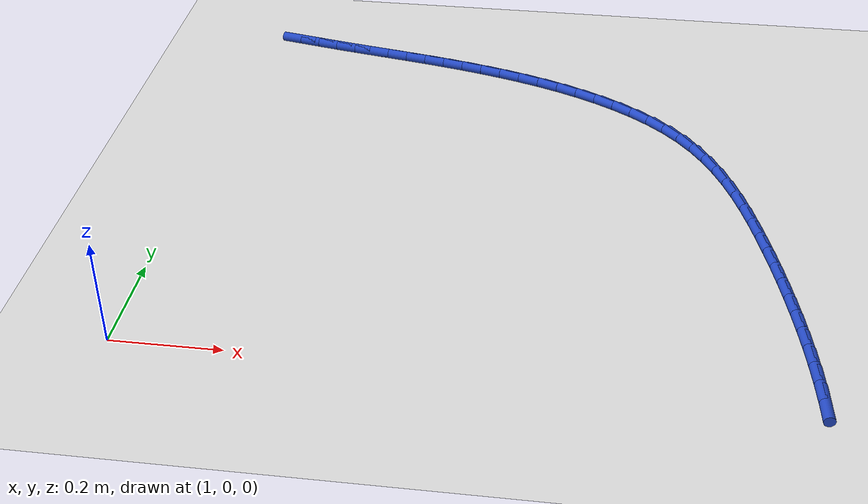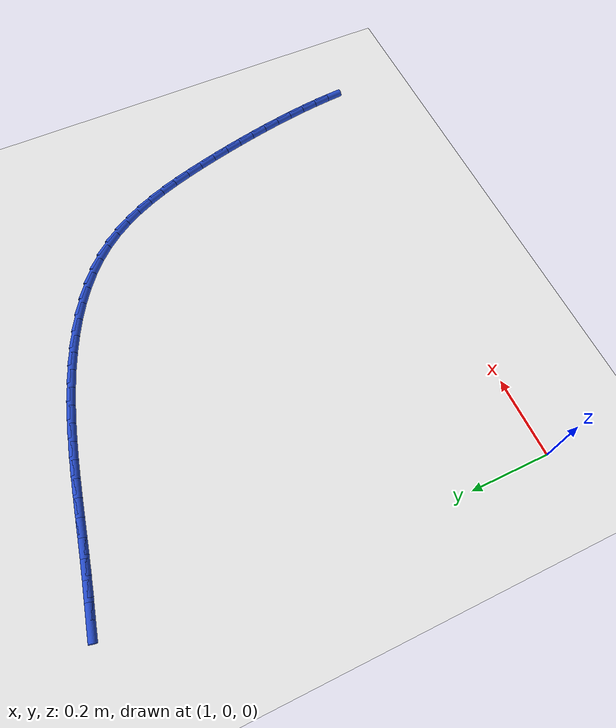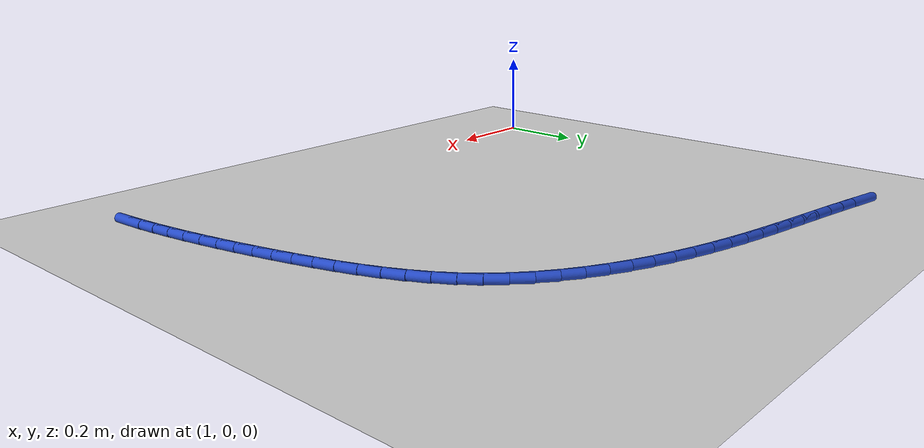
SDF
<sdf version="1.6">
 <world name="default">
  <model name="ground_plane">
   <static>1</static>
   <link name="link">
    <collision name="collision">
     <geometry><plane><normal>0 0 1</normal><size>100 100</size></plane></geometry>
     <surface><friction><ode><mu>100</mu><mu2>50</mu2></ode></friction></surface>
    </collision>
    <visual name="visual">
     <cast_shadows>0</cast_shadows>
     <geometry><plane><normal>0 0 1</normal><size>100 100</size></plane></geometry>
     <material>
      <script><uri>file://media/materials/scripts/gazebo.material</uri><name>Gazebo/WhiteGlow</name></script>
     </material>
    </visual>
   </link>
  </model>
  <model name="line">
   <link name="link_39">
    <pose>1.0905846571315483 1.0533346934213708 0.01 0 1.57 -0.20464670937285362</pose>
    <collision name="collision">
     <geometry><cylinder><radius>0.01</radius><length>0.08</length></cylinder></geometry>
    </collision>
    <visual name="visual">
     <material>
      <script><name>Gazebo/Blue</name><uri>file://media/materials/scripts/gazebo.material</uri></script>
     </material>
     <geometry><cylinder><radius>0.01</radius><length>0.08</length></cylinder></geometry>
    </visual>
   </link>
   <link name="link_40">
    <pose>1.1341519393956485 1.0442922046361267 0.01 0 1.57 -0.202477934255128</pose>
    <collision name="collision">
     <geometry><cylinder><radius>0.01</radius><length>0.08</length></cylinder></geometry>
    </collision>
    <visual name="visual">
     <material>
      <script><name>Gazebo/Blue</name><uri>file://media/materials/scripts/gazebo.material</uri></script>
     </material>
     <geometry><cylinder><radius>0.01</radius><length>0.08</length></cylinder></geometry>
    </visual>
   </link>
   <link name="link_41">
    <pose>1.177596903277948 1.035373340506603 0.01 0 1.57 -0.19210740276732197</pose>
    <collision name="collision">
     <geometry><cylinder><radius>0.01</radius><length>0.08</length></cylinder></geometry>
    </collision>
    <visual name="visual">
     <material>
      <script><name>Gazebo/Blue</name><uri>file://media/materials/scripts/gazebo.material</uri></script>
     </material>
     <geometry><cylinder><radius>0.01</radius><length>0.08</length></cylinder></geometry>
    </visual>
   </link>
   <link name="link_42">
    <pose>1.2209153533538637 1.0269476387652823 0.01 0 1.57 -0.18458665404068675</pose>
    <collision name="collision">
     <geometry><cylinder><radius>0.01</radius><length>0.08</length></cylinder></geometry>
    </collision>
    <visual name="visual">
     <material>
      <script><name>Gazebo/Blue</name><uri>file://media/materials/scripts/gazebo.material</uri></script>
     </material>
     <geometry><cylinder><radius>0.01</radius><length>0.08</length></cylinder></geometry>
    </visual>
   </link>
   <link name="link_43">
    <pose>1.2641364574825134 1.0188777377213005 0.01 0 1.57 -0.18189383639944168</pose>
    <collision name="collision">
     <geometry><cylinder><radius>0.01</radius><length>0.08</length></cylinder></geometry>
    </collision>
    <visual name="visual">
     <material>
      <script><name>Gazebo/Blue</name><uri>file://media/materials/scripts/gazebo.material</uri></script>
     </material>
     <geometry><cylinder><radius>0.01</radius><length>0.08</length></cylinder></geometry>
    </visual>
   </link>
   <link name="link_44">
    <pose>1.3072950809854798 1.0109397122488666 0.01 0 1.57 -0.184071219256805</pose>
    <collision name="collision">
     <geometry><cylinder><radius>0.01</radius><length>0.08</length></cylinder></geometry>
    </collision>
    <visual name="visual">
     <material>
      <script><name>Gazebo/Blue</name><uri>file://media/materials/scripts/gazebo.material</uri></script>
     </material>
     <geometry><cylinder><radius>0.01</radius><length>0.08</length></cylinder></geometry>
    </visual>
   </link>
   <link name="link_45">
    <pose>1.3504260891843447 1.0029096372221902 0.01 0 1.57 -0.19111093273985194</pose>
    <collision name="collision">
     <geometry><cylinder><radius>0.01</radius><length>0.08</length></cylinder></geometry>
    </collision>
    <visual name="visual">
     <material>
      <script><name>Gazebo/Blue</name><uri>file://media/materials/scripts/gazebo.material</uri></script>
     </material>
     <geometry><cylinder><radius>0.01</radius><length>0.08</length></cylinder></geometry>
    </visual>
   </link>
   <link name="link_46">
    <pose>1.3935643474006902 0.9945635875154802 0.01 0 1.57 -0.202953517383078</pose>
    <collision name="collision">
     <geometry><cylinder><radius>0.01</radius><length>0.08</length></cylinder></geometry>
    </collision>
    <visual name="visual">
     <material>
      <script><name>Gazebo/Blue</name><uri>file://media/materials/scripts/gazebo.material</uri></script>
     </material>
     <geometry><cylinder><radius>0.01</radius><length>0.08</length></cylinder></geometry>
    </visual>
   </link>
   <link name="link_47">
    <pose>1.4367447209560988 0.9856776380029463 0.01 0 1.57 -0.2194845324050165</pose>
    <collision name="collision">
     <geometry><cylinder><radius>0.01</radius><length>0.08</length></cylinder></geometry>
    </collision>
    <visual name="visual">
     <material>
      <script><name>Gazebo/Blue</name><uri>file://media/materials/scripts/gazebo.material</uri></script>
     </material>
     <geometry><cylinder><radius>0.01</radius><length>0.08</length></cylinder></geometry>
    </visual>
   </link>
   <link name="link_48">
    <pose>1.4800020751721525 0.9760278635587967 0.01 0 1.57 -0.2405298143651853</pose>
    <collision name="collision">
     <geometry><cylinder><radius>0.01</radius><length>0.08</length></cylinder></geometry>
    </collision>
    <visual name="visual">
     <material>
      <script><name>Gazebo/Blue</name><uri>file://media/materials/scripts/gazebo.material</uri></script>
     </material>
     <geometry><cylinder><radius>0.01</radius><length>0.08</length></cylinder></geometry>
    </visual>
   </link>
   <link name="link_49">
    <pose>1.5233712753704336 0.9653903390572418 0.01 0 1.57 -0.2658501743627113</pose>
    <collision name="collision">
     <geometry><cylinder><radius>0.01</radius><length>0.08</length></cylinder></geometry>
    </collision>
    <visual name="visual">
     <material>
      <script><name>Gazebo/Blue</name><uri>file://media/materials/scripts/gazebo.material</uri></script>
     </material>
     <geometry><cylinder><radius>0.01</radius><length>0.08</length></cylinder></geometry>
    </visual>
   </link>
   <link name="link_50">
    <pose>1.5668863192249292 0.9535413860957317 0.01 0 1.57 -0.29518545745611224</pose>
    <collision name="collision">
     <geometry><cylinder><radius>0.01</radius><length>0.08</length></cylinder></geometry>
    </collision>
    <visual name="visual">
     <material>
      <script><name>Gazebo/Blue</name><uri>file://media/materials/scripts/gazebo.material</uri></script>
     </material>
     <geometry><cylinder><radius>0.01</radius><length>0.08</length></cylinder></geometry>
    </visual>
   </link>
   <link name="link_51">
    <pose>1.6104699896521077 0.9402889511683342 0.01 0 1.57 -0.32866140924841397</pose>
    <collision name="collision">
     <geometry><cylinder><radius>0.01</radius><length>0.08</length></cylinder></geometry>
    </collision>
    <visual name="visual">
     <material>
      <script><name>Gazebo/Blue</name><uri>file://media/materials/scripts/gazebo.material</uri></script>
     </material>
     <geometry><cylinder><radius>0.01</radius><length>0.08</length></cylinder></geometry>
    </visual>
   </link>
   <link name="link_52">
    <pose>1.6538256396673474 0.9255033775956852 0.01 0 1.57 -0.3667156572551275</pose>
    <collision name="collision">
     <geometry><cylinder><radius>0.01</radius><length>0.08</length></cylinder></geometry>
    </collision>
    <visual name="visual">
     <material>
      <script><name>Gazebo/Blue</name><uri>file://media/materials/scripts/gazebo.material</uri></script>
     </material>
     <geometry><cylinder><radius>0.01</radius><length>0.08</length></cylinder></geometry>
    </visual>
   </link>
   <link name="link_53">
    <pose>1.6966309251855796 0.9090623158954425 0.01 0 1.57 -0.40987348086256875</pose>
    <collision name="collision">
     <geometry><cylinder><radius>0.01</radius><length>0.08</length></cylinder></geometry>
    </collision>
    <visual name="visual">
     <material>
      <script><name>Gazebo/Blue</name><uri>file://media/materials/scripts/gazebo.material</uri></script>
     </material>
     <geometry><cylinder><radius>0.01</radius><length>0.08</length></cylinder></geometry>
    </visual>
   </link>
   <link name="link_54">
    <pose>1.7385635021217336 0.8908434165852644 0.01 0 1.57 -0.4587324882292901</pose>
    <collision name="collision">
     <geometry><cylinder><radius>0.01</radius><length>0.08</length></cylinder></geometry>
    </collision>
    <visual name="visual">
     <material>
      <script><name>Gazebo/Blue</name><uri>file://media/materials/scripts/gazebo.material</uri></script>
     </material>
     <geometry><cylinder><radius>0.01</radius><length>0.08</length></cylinder></geometry>
    </visual>
   </link>
   <link name="link_55">
    <pose>1.77930102639074 0.8707243301828093 0.01 0 1.57 -0.5139434324421377</pose>
    <collision name="collision">
     <geometry><cylinder><radius>0.01</radius><length>0.08</length></cylinder></geometry>
    </collision>
    <visual name="visual">
     <material>
      <script><name>Gazebo/Blue</name><uri>file://media/materials/scripts/gazebo.material</uri></script>
     </material>
     <geometry><cylinder><radius>0.01</radius><length>0.08</length></cylinder></geometry>
    </visual>
   </link>
   <link name="link_56">
    <pose>1.8185211539075303 0.8485827072057349 0.01 0 1.57 -0.57617317073375</pose>
    <collision name="collision">
     <geometry><cylinder><radius>0.01</radius><length>0.08</length></cylinder></geometry>
    </collision>
    <visual name="visual">
     <material>
      <script><name>Gazebo/Blue</name><uri>file://media/materials/scripts/gazebo.material</uri></script>
     </material>
     <geometry><cylinder><radius>0.01</radius><length>0.08</length></cylinder></geometry>
    </visual>
   </link>
   <link name="link_57">
    <pose>1.8559015405870343 0.8242961981717001 0.01 0 1.57 -0.6460407203655865</pose>
    <collision name="collision">
     <geometry><cylinder><radius>0.01</radius><length>0.08</length></cylinder></geometry>
    </collision>
    <visual name="visual">
     <material>
      <script><name>Gazebo/Blue</name><uri>file://media/materials/scripts/gazebo.material</uri></script>
     </material>
     <geometry><cylinder><radius>0.01</radius><length>0.08</length></cylinder></geometry>
    </visual>
   </link>
   <link name="link_58">
    <pose>1.8911198423441828 0.7977424535983626 0.01 0 1.57 -0.7240175976298837</pose>
    <collision name="collision">
     <geometry><cylinder><radius>0.01</radius><length>0.08</length></cylinder></geometry>
    </collision>
    <visual name="visual">
     <material>
      <script><name>Gazebo/Blue</name><uri>file://media/materials/scripts/gazebo.material</uri></script>
     </material>
     <geometry><cylinder><radius>0.01</radius><length>0.08</length></cylinder></geometry>
    </visual>
   </link>
   <link name="link_59">
    <pose>1.9238537150939061 0.7687991240033809 0.01 0 1.57 -0.8102888444631497</pose>
    <collision name="collision">
     <geometry><cylinder><radius>0.01</radius><length>0.08</length></cylinder></geometry>
    </collision>
    <visual name="visual">
     <material>
      <script><name>Gazebo/Blue</name><uri>file://media/materials/scripts/gazebo.material</uri></script>
     </material>
     <geometry><cylinder><radius>0.01</radius><length>0.08</length></cylinder></geometry>
    </visual>
   </link>
   <link name="link_60">
    <pose>1.9537808147511333 0.7373438599044128 0.01 0 1.57 -0.9038941767574197</pose>
    <collision name="collision">
     <geometry><cylinder><radius>0.01</radius><length>0.08</length></cylinder></geometry>
    </collision>
    <visual name="visual">
     <material>
      <script><name>Gazebo/Blue</name><uri>file://media/materials/scripts/gazebo.material</uri></script>
     </material>
     <geometry><cylinder><radius>0.01</radius><length>0.08</length></cylinder></geometry>
    </visual>
   </link>
   <link name="link_61">
    <pose>1.9806025216551537 0.7032726186183581 0.01 0 1.57 -0.9939073427537598</pose>
    <collision name="collision">
     <geometry><cylinder><radius>0.01</radius><length>0.08</length></cylinder></geometry>
    </collision>
    <visual name="visual">
     <material>
      <script><name>Gazebo/Blue</name><uri>file://media/materials/scripts/gazebo.material</uri></script>
     </material>
     <geometry><cylinder><radius>0.01</radius><length>0.08</length></cylinder></geometry>
    </visual>
   </link>
   <link name="link_62">
    <pose>2.0043687355795408 0.6667502902387098 0.01 0 1.57 -1.0720706787270513</pose>
    <collision name="collision">
     <geometry><cylinder><radius>0.01</radius><length>0.08</length></cylinder></geometry>
    </collision>
    <visual name="visual">
     <material>
      <script><name>Gazebo/Blue</name><uri>file://media/materials/scripts/gazebo.material</uri></script>
     </material>
     <geometry><cylinder><radius>0.01</radius><length>0.08</length></cylinder></geometry>
    </visual>
   </link>
   <link name="link_63">
    <pose>2.0253943770851337 0.628146266442407 0.01 0 1.57 -1.1383589704323769</pose>
    <collision name="collision">
     <geometry><cylinder><radius>0.01</radius><length>0.08</length></cylinder></geometry>
    </collision>
    <visual name="visual">
     <material>
      <script><name>Gazebo/Blue</name><uri>file://media/materials/scripts/gazebo.material</uri></script>
     </material>
     <geometry><cylinder><radius>0.01</radius><length>0.08</length></cylinder></geometry>
    </visual>
   </link>
   <link name="link_64">
    <pose>2.0440009977478404 0.5878350556864552 0.01 0 1.57 -1.1933658331264245</pose>
    <collision name="collision">
     <geometry><cylinder><radius>0.01</radius><length>0.08</length></cylinder></geometry>
    </collision>
    <visual name="visual">
     <material>
      <script><name>Gazebo/Blue</name><uri>file://media/materials/scripts/gazebo.material</uri></script>
     </material>
     <geometry><cylinder><radius>0.01</radius><length>0.08</length></cylinder></geometry>
    </visual>
   </link>
   <link name="link_65">
    <pose>2.0605101491435676 0.5461911664278596 0.01 0 1.57 -1.2378378202015998</pose>
    <collision name="collision">
     <geometry><cylinder><radius>0.01</radius><length>0.08</length></cylinder></geometry>
    </collision>
    <visual name="visual">
     <material>
      <script><name>Gazebo/Blue</name><uri>file://media/materials/scripts/gazebo.material</uri></script>
     </material>
     <geometry><cylinder><radius>0.01</radius><length>0.08</length></cylinder></geometry>
    </visual>
   </link>
   <link name="link_66">
    <pose>2.0752433828482233 0.5035891071236247 0.01 0 1.57 -1.2724887690015396</pose>
    <collision name="collision">
     <geometry><cylinder><radius>0.01</radius><length>0.08</length></cylinder></geometry>
    </collision>
    <visual name="visual">
     <material>
      <script><name>Gazebo/Blue</name><uri>file://media/materials/scripts/gazebo.material</uri></script>
     </material>
     <geometry><cylinder><radius>0.01</radius><length>0.08</length></cylinder></geometry>
    </visual>
   </link>
   <link name="link_67">
    <pose>2.088522250437714 0.4604033862307565 0.01 0 1.57 -1.2978840357710666</pose>
    <collision name="collision">
     <geometry><cylinder><radius>0.01</radius><length>0.08</length></cylinder></geometry>
    </collision>
    <visual name="visual">
     <material>
      <script><name>Gazebo/Blue</name><uri>file://media/materials/scripts/gazebo.material</uri></script>
     </material>
     <geometry><cylinder><radius>0.01</radius><length>0.08</length></cylinder></geometry>
    </visual>
   </link>
   <link name="link_68">
    <pose>2.1006683034879474 0.41700851220625945 0.01 0 1.57 -1.3153705076198452</pose>
    <collision name="collision">
     <geometry><cylinder><radius>0.01</radius><length>0.08</length></cylinder></geometry>
    </collision>
    <visual name="visual">
     <material>
      <script><name>Gazebo/Blue</name><uri>file://media/materials/scripts/gazebo.material</uri></script>
     </material>
     <geometry><cylinder><radius>0.01</radius><length>0.08</length></cylinder></geometry>
    </visual>
   </link>
   <link name="link_69">
    <pose>2.1119690992795714 0.373731929173753 0.01 0 1.57 -1.33080503431726</pose>
    <collision name="collision">
     <geometry><cylinder><radius>0.01</radius><length>0.08</length></cylinder></geometry>
    </collision>
    <visual name="visual">
     <material>
      <script><name>Gazebo/Blue</name><uri>file://media/materials/scripts/gazebo.material</uri></script>
     </material>
     <geometry><cylinder><radius>0.01</radius><length>0.08</length></cylinder></geometry>
    </visual>
   </link>
   <link name="link_70">
    <pose>2.1225164460687775 0.3306300711571564 0.01 0 1.57 -1.3462037266616618</pose>
    <collision name="collision">
     <geometry><cylinder><radius>0.01</radius><length>0.08</length></cylinder></geometry>
    </collision>
    <visual name="visual">
     <material>
      <script><name>Gazebo/Blue</name><uri>file://media/materials/scripts/gazebo.material</uri></script>
     </material>
     <geometry><cylinder><radius>0.01</radius><length>0.08</length></cylinder></geometry>
    </visual>
   </link>
   <link name="link_71">
    <pose>2.1323322295170537 0.28766256592853956 0.01 0 1.57 -1.3615142885913125</pose>
    <collision name="collision">
     <geometry><cylinder><radius>0.01</radius><length>0.08</length></cylinder></geometry>
    </collision>
    <visual name="visual">
     <material>
      <script><name>Gazebo/Blue</name><uri>file://media/materials/scripts/gazebo.material</uri></script>
     </material>
     <geometry><cylinder><radius>0.01</radius><length>0.08</length></cylinder></geometry>
    </visual>
   </link>
   <link name="link_72">
    <pose>2.141438247999538 0.2447889204139899 0.01 0 1.57 -1.3767473758317377</pose>
    <collision name="collision">
     <geometry><cylinder><radius>0.01</radius><length>0.08</length></cylinder></geometry>
    </collision>
    <visual name="visual">
     <material>
      <script><name>Gazebo/Blue</name><uri>file://media/materials/scripts/gazebo.material</uri></script>
     </material>
     <geometry><cylinder><radius>0.01</radius><length>0.08</length></cylinder></geometry>
    </visual>
   </link>
   <link name="link_73">
    <pose>2.14985326815404 0.20196914995853085 0.01 0 1.57 -1.3928373715265758</pose>
    <collision name="collision">
     <geometry><cylinder><radius>0.01</radius><length>0.08</length></cylinder></geometry>
    </collision>
    <visual name="visual">
     <material>
      <script><name>Gazebo/Blue</name><uri>file://media/materials/scripts/gazebo.material</uri></script>
     </material>
     <geometry><cylinder><radius>0.01</radius><length>0.08</length></cylinder></geometry>
    </visual>
   </link>
   <link name="link_74">
    <pose>2.1575510480495095 0.15917081779353703 0.01 0 1.57 -1.4105181662942863</pose>
    <collision name="collision">
     <geometry><cylinder><radius>0.01</radius><length>0.08</length></cylinder></geometry>
    </collision>
    <visual name="visual">
     <material>
      <script><name>Gazebo/Blue</name><uri>file://media/materials/scripts/gazebo.material</uri></script>
     </material>
     <geometry><cylinder><radius>0.01</radius><length>0.08</length></cylinder></geometry>
    </visual>
   </link>
   <link name="link_75">
    <pose>2.164470878844193 0.11636726721252062 0.01 0 1.57 -1.429792302581687</pose>
    <collision name="collision">
     <geometry><cylinder><radius>0.01</radius><length>0.08</length></cylinder></geometry>
    </collision>
    <visual name="visual">
     <material>
      <script><name>Gazebo/Blue</name><uri>file://media/materials/scripts/gazebo.material</uri></script>
     </material>
     <geometry><cylinder><radius>0.01</radius><length>0.08</length></cylinder></geometry>
    </visual>
   </link>
   <link name="link_76">
    <pose>2.1705511754668154 0.07353198845169881 0.01 0 1.57 -1.4506330481211134</pose>
    <collision name="collision">
     <geometry><cylinder><radius>0.01</radius><length>0.08</length></cylinder></geometry>
    </collision>
    <visual name="visual">
     <material>
      <script><name>Gazebo/Blue</name><uri>file://media/materials/scripts/gazebo.material</uri></script>
     </material>
     <geometry><cylinder><radius>0.01</radius><length>0.08</length></cylinder></geometry>
    </visual>
   </link>
   <link name="link_77">
    <pose>2.1757303528461014 0.03063847174728956 0.01 0 1.57 -1.4730021776839637</pose>
    <collision name="collision">
     <geometry><cylinder><radius>0.01</radius><length>0.08</length></cylinder></geometry>
    </collision>
    <visual name="visual">
     <material>
      <script><name>Gazebo/Blue</name><uri>file://media/materials/scripts/gazebo.material</uri></script>
     </material>
     <geometry><cylinder><radius>0.01</radius><length>0.08</length></cylinder></geometry>
    </visual>
   </link>
   <link name="link_78">
    <pose>2.1799468259107764 -0.012339792664490482 0.01 0 1.57 -1.4968488128597406</pose>
    <collision name="collision">
     <geometry><cylinder><radius>0.01</radius><length>0.08</length></cylinder></geometry>
    </collision>
    <visual name="visual">
     <material>
      <script><name>Gazebo/Blue</name><uri>file://media/materials/scripts/gazebo.material</uri></script>
     </material>
     <geometry><cylinder><radius>0.01</radius><length>0.08</length></cylinder></geometry>
    </visual>
   </link>
  </model>
 </world>
</sdf>
